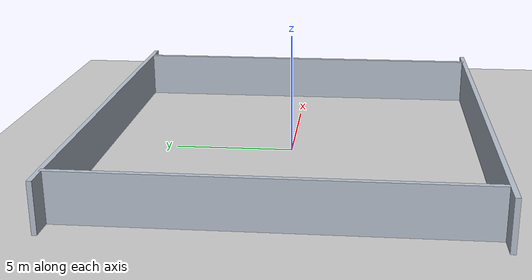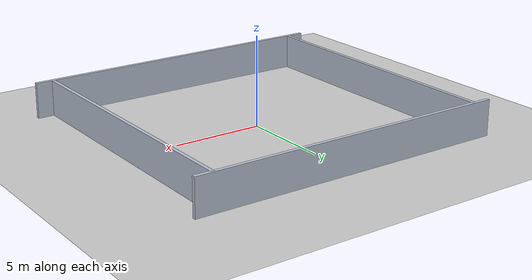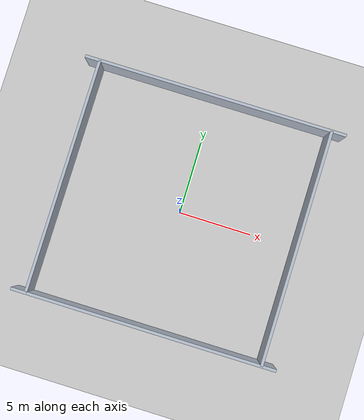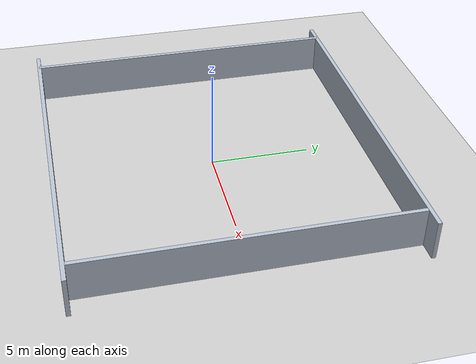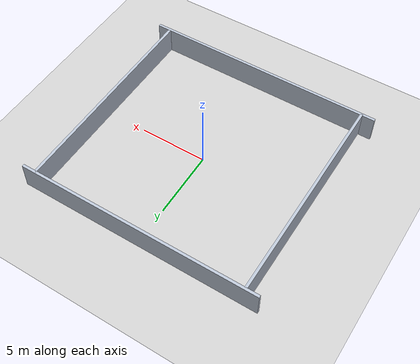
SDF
<sdf version="1.7">
 <world name="tracked_mid360_fastlio_world">
  <model name="ground_plane">
   <static>1</static>
   <link name="link">
    <collision name="collision">
     <geometry><plane><normal>0 0 1</normal><size>100 100</size></plane></geometry>
     <surface>
      <contact><collide_bitmask>65535</collide_bitmask></contact>
      <friction><ode><mu>100</mu><mu2>50</mu2></ode></friction>
     </surface>
    </collision>
    <visual name="visual">
     <cast_shadows>0</cast_shadows>
     <geometry><plane><normal>0 0 1</normal><size>100 100</size></plane></geometry>
     <material>
      <script><uri>file://media/materials/scripts/gazebo.material</uri><name>Gazebo/Grey</name></script>
     </material>
    </visual>
   </link>
  </model>
  <light name="sun" type="directional">
   <pose>0 0 10 0 -0 0</pose>
   <diffuse>0.8 0.8 0.8 1</diffuse>
   <specular>0.2 0.2 0.2 1</specular>
   <attenuation>
    <range>1000</range>
    <constant>0.9</constant>
    <linear>0.01</linear>
    <quadratic>0.001</quadratic>
   </attenuation>
   <direction>-0.5 0.1 -0.9</direction>
   <spot><inner_angle>0</inner_angle><outer_angle>0</outer_angle><falloff>0</falloff></spot>
  </light>
  <physics type="ode">
   <max_step_size>0.001</max_step_size>
   <real_time_update_rate>1000</real_time_update_rate>
   <real_time_factor>1</real_time_factor>
  </physics>
  <scene><ambient>0.45 0.45 0.45 1</ambient><background>0.9 0.92 0.96 1</background><shadows>1</shadows></scene>
  <model name="north_wall">
   <static>1</static>
   <pose>0 8 1 0 -0 0</pose>
   <link name="link">
    <collision name="collision"><geometry><box><size>18 0.2 2</size></box></geometry></collision>
    <visual name="visual">
     <geometry><box><size>18 0.2 2</size></box></geometry>
     <material><ambient>0.72 0.76 0.82 1</ambient><diffuse>0.72 0.76 0.82 1</diffuse></material>
    </visual>
   </link>
  </model>
  <model name="south_wall">
   <static>1</static>
   <pose>0 -8 1 0 -0 0</pose>
   <link name="link">
    <collision name="collision"><geometry><box><size>18 0.2 2</size></box></geometry></collision>
    <visual name="visual">
     <geometry><box><size>18 0.2 2</size></box></geometry>
     <material><ambient>0.72 0.76 0.82 1</ambient><diffuse>0.72 0.76 0.82 1</diffuse></material>
    </visual>
   </link>
  </model>
  <model name="east_wall">
   <static>1</static>
   <pose>8 0 1 0 -0 1.5708</pose>
   <link name="link">
    <collision name="collision"><geometry><box><size>16 0.2 2</size></box></geometry></collision>
    <visual name="visual">
     <geometry><box><size>16 0.2 2</size></box></geometry>
     <material><ambient>0.72 0.76 0.82 1</ambient><diffuse>0.72 0.76 0.82 1</diffuse></material>
    </visual>
   </link>
  </model>
  <model name="west_wall">
   <static>1</static>
   <pose>-8 0 1 0 -0 1.5708</pose>
   <link name="link">
    <collision name="collision"><geometry><box><size>16 0.2 2</size></box></geometry></collision>
    <visual name="visual">
     <geometry><box><size>16 0.2 2</size></box></geometry>
     <material><ambient>0.72 0.76 0.82 1</ambient><diffuse>0.72 0.76 0.82 1</diffuse></material>
    </visual>
   </link>
  </model>
  <gravity>0 0 -9.8</gravity>
  <magnetic_field>6e-06 2.3e-05 -4.2e-05</magnetic_field>
  <atmosphere type="adiabatic"/>
  <spherical_coordinates>
   <surface_model>EARTH_WGS84</surface_model>
   <latitude_deg>0</latitude_deg>
   <longitude_deg>0</longitude_deg>
   <elevation>0</elevation>
   <heading_deg>0</heading_deg>
  </spherical_coordinates>
 </world>
</sdf>
